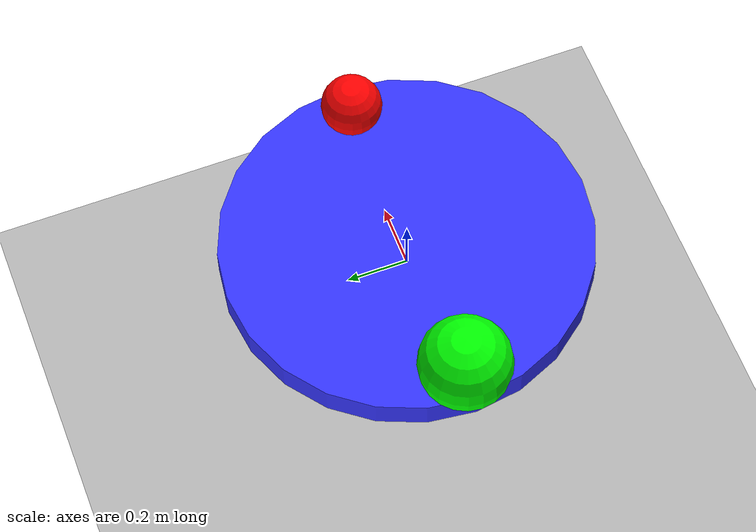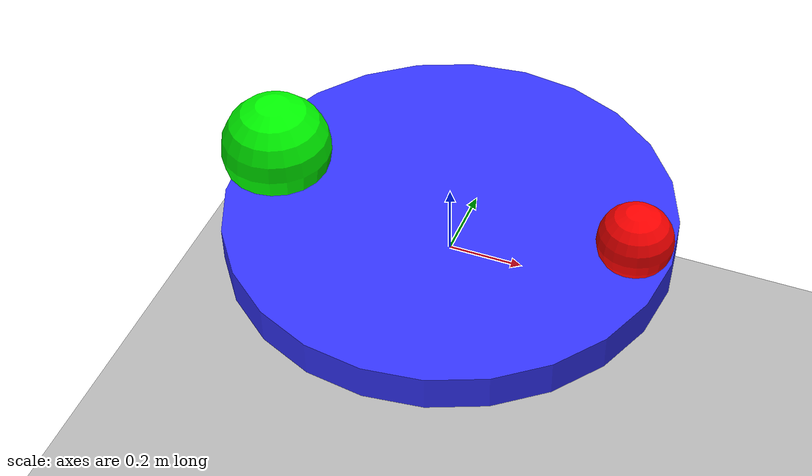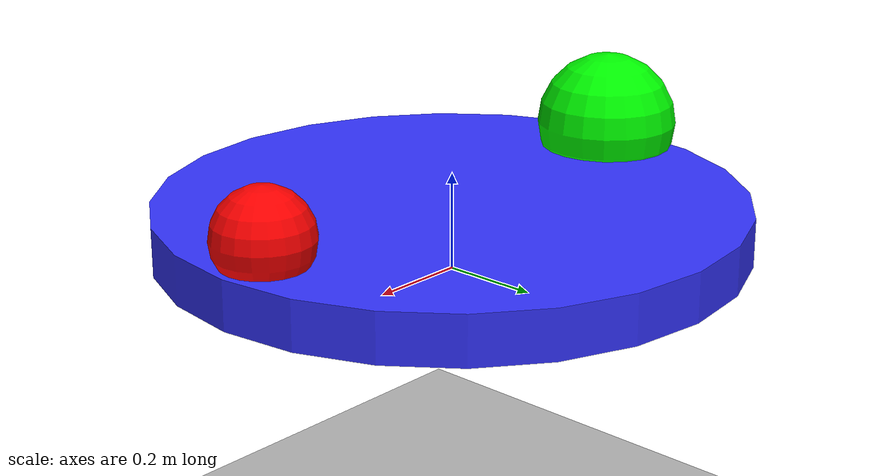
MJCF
<mujoco>
  <option gravity="0 0 -9.81"/>
  <worldbody>
    <body name="ground" pos="0 0 -1">
      <geom type="plane" size="30 30 0.1" rgba="0.7 0.7 0.7 1"/>
    </body>
    <body name="platform" pos="0 0 0.1">
      <geom type="cylinder" size="0.6 0.05" density="0.5" rgba="0.2 0.2 1 1"/>
      <joint type="hinge" axis="0 0 1" name="rotation"/>
    </body>
    <body name="mass_1" pos="0.5 0 0.2">
      <geom type="sphere" size="0.1" density="1" rgba="1 0 0 1"/>
    </body>
    <body name="mass_2" pos="-0.5 0 0.2">
      <geom type="sphere" size="0.15" density="1" rgba="0 1 0 1"/>
    </body>
  </worldbody>
</mujoco>
